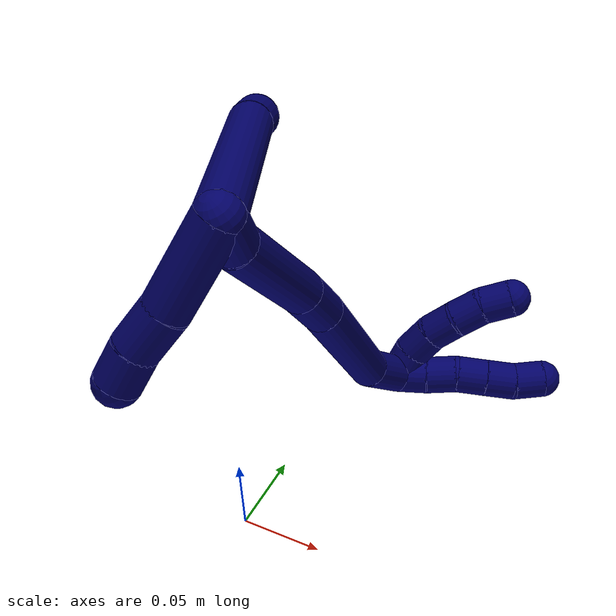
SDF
<sdf version="1.7">
 <world name="default">
  <model name="photoneo_s_sensor">
   <static>1</static>
   <pose>0 0 2 1.57079 1.57079 3.14159</pose>
   <link name="link">
    <inertial><mass>0.1</mass></inertial>
    <sensor name="sensor" type="depth">
     <update_rate>30</update_rate>
     <camera>
      <horizontal_fov>1.22</horizontal_fov>
      <image><width>1920</width><height>1200</height><format>B8G8R8</format></image>
      <clip><near>0.1</near><far>4</far></clip>
      <depth_camera><output>points</output></depth_camera>
     </camera>
     <plugin name="camera_plugin" filename="libgazebo_ros_depth_camera.so">
      <baseline>0.2</baseline>
      <alwaysOn>1</alwaysOn>
      <updateRate>0.0</updateRate>
      <cameraName>camera_ir</cameraName>
      <imageTopicName>/camera/color/image_raw</imageTopicName>
      <cameraInfoTopicName>/camera/color/camera_info</cameraInfoTopicName>
      <depthImageTopicName>/camera/depth/image_raw</depthImageTopicName>
      <depthImageCameraInfoTopicName>/camera/depth/camera_info</depthImageCameraInfoTopicName>
      <pointCloudTopicName>/camera/depth/points</pointCloudTopicName>
      <frameName>fr_optical</frameName>
      <pointCloudCutoff>0.1</pointCloudCutoff>
      <pointCloudCutoffMax>2.0</pointCloudCutoffMax>
      <distortionK1>0</distortionK1>
      <distortionK2>0</distortionK2>
      <distortionK3>0</distortionK3>
      <distortionT1>0</distortionT1>
      <distortionT2>0</distortionT2>
      <CxPrime>0</CxPrime>
      <Cx>0</Cx>
      <Cy>0</Cy>
      <focalLength>0</focalLength>
      <hackBaseline>0</hackBaseline>
     </plugin>
    </sensor>
   </link>
  </model>
  <model name="bin">
   <static>1</static>
   <link name="bottom">
    <collision name="collision-bottom">
     <pose>0 0 -0.01 0 -0 0</pose>
     <geometry><box><size>0.8 0.6 0.02</size></box></geometry>
     <surface>
      <friction><ode><mu>100</mu><mu2>100</mu2></ode></friction>
      <contact><collide_bitmask>65535</collide_bitmask></contact>
     </surface>
    </collision>
   </link>
   <link name="west_wall">
    <collision name="collision-west_wall">
     <pose>-0.41 0 0.1 0 -0 0</pose>
     <geometry><box><size>0.02 0.6 0.2</size></box></geometry>
     <surface>
      <friction><ode><mu>100</mu><mu2>100</mu2></ode></friction>
      <contact><collide_bitmask>65535</collide_bitmask></contact>
     </surface>
    </collision>
   </link>
   <link name="east_wall">
    <collision name="collision-east_wall">
     <pose>0.41 0 0.1 0 -0 0</pose>
     <geometry><box><size>0.02 0.6 0.2</size></box></geometry>
     <surface>
      <friction><ode><mu>100</mu><mu2>100</mu2></ode></friction>
      <contact><collide_bitmask>65535</collide_bitmask></contact>
     </surface>
    </collision>
   </link>
   <link name="south_wall">
    <collision name="collision-south_wall">
     <pose>0 -0.31 0.1 0 -0 0</pose>
     <geometry><box><size>0.8 0.02 0.2</size></box></geometry>
     <surface>
      <friction><ode><mu>100</mu><mu2>100</mu2></ode></friction>
      <contact><collide_bitmask>65535</collide_bitmask></contact>
     </surface>
    </collision>
   </link>
   <link name="north_wall">
    <collision name="collision-north_wall">
     <pose>0 0.31 0.1 0 -0 0</pose>
     <geometry><box><size>0.8 0.02 0.2</size></box></geometry>
     <surface>
      <friction><ode><mu>100</mu><mu2>100</mu2></ode></friction>
      <contact><collide_bitmask>65535</collide_bitmask></contact>
     </surface>
    </collision>
   </link>
  </model>
  <model name="7">
   <static>0</static>
   <link name="7">
    <collision name="collision-cylinder-e_1_2_8">
     <pose>-0.039611 0.046461 -0.020228 -1.98142 -0.663484 0.967956</pose>
     <geometry><cylinder><radius>0.0125</radius><length>0.128636</length></cylinder></geometry>
     <surface>
      <friction><ode><mu>1.16</mu><mu2>1.16</mu2><slip1>0</slip1><slip2>0</slip2></ode></friction>
      <contact><ode><kp>1e+06</kp><kd>1</kd><max_vel>0</max_vel><min_depth>0.001</min_depth></ode></contact>
     </surface>
    </collision>
    <visual name="visual-cylinder-e_1_2_8">
     <pose>-0.039611 0.046461 -0.020228 -1.98142 -0.663484 0.967956</pose>
     <geometry><cylinder><radius>0.0125</radius><length>0.128636</length></cylinder></geometry>
     <material><ambient>0.003922 0 0.403922 1</ambient></material>
    </visual>
    <collision name="collision-cylinder-e_2_8_6">
     <pose>-0.085256 0.100359 -0.045187 -2.13741 -0.600184 1.02648</pose>
     <geometry><cylinder><radius>0.0125</radius><length>0.021364</length></cylinder></geometry>
     <surface>
      <friction><ode><mu>1.16</mu><mu2>1.16</mu2><slip1>0</slip1><slip2>0</slip2></ode></friction>
      <contact><ode><kp>1e+06</kp><kd>1</kd><max_vel>0</max_vel><min_depth>0.001</min_depth></ode></contact>
     </surface>
    </collision>
    <visual name="visual-cylinder-e_2_8_6">
     <pose>-0.085256 0.100359 -0.045187 -2.13741 -0.600184 1.02648</pose>
     <geometry><cylinder><radius>0.0125</radius><length>0.021364</length></cylinder></geometry>
     <material><ambient>0.003922 0 0.403922 1</ambient></material>
    </visual>
    <collision name="collision-cylinder-e_1_2_9">
     <pose>-0.012031 -0.017141 -0.016113 2.32528 -0.472711 -1.01636</pose>
     <geometry><cylinder><radius>0.0125</radius><length>0.052847</length></cylinder></geometry>
     <surface>
      <friction><ode><mu>1.16</mu><mu2>1.16</mu2><slip1>0</slip1><slip2>0</slip2></ode></friction>
      <contact><ode><kp>1e+06</kp><kd>1</kd><max_vel>0</max_vel><min_depth>0.001</min_depth></ode></contact>
     </surface>
    </collision>
    <visual name="visual-cylinder-e_1_2_9">
     <pose>-0.012031 -0.017141 -0.016113 2.32528 -0.472711 -1.01636</pose>
     <geometry><cylinder><radius>0.0125</radius><length>0.052847</length></cylinder></geometry>
     <material><ambient>0.003922 0 0.403922 1</ambient></material>
    </visual>
    <collision name="collision-cylinder-e_2_9_10">
     <pose>-0.03103 -0.042887 -0.038823 2.22493 -0.571231 -1.07373</pose>
     <geometry><cylinder><radius>0.0125</radius><length>0.025776</length></cylinder></geometry>
     <surface>
      <friction><ode><mu>1.16</mu><mu2>1.16</mu2><slip1>0</slip1><slip2>0</slip2></ode></friction>
      <contact><ode><kp>1e+06</kp><kd>1</kd><max_vel>0</max_vel><min_depth>0.001</min_depth></ode></contact>
     </surface>
    </collision>
    <visual name="visual-cylinder-e_2_9_10">
     <pose>-0.03103 -0.042887 -0.038823 2.22493 -0.571231 -1.07373</pose>
     <geometry><cylinder><radius>0.0125</radius><length>0.025776</length></cylinder></geometry>
     <material><ambient>0.003922 0 0.403922 1</ambient></material>
    </visual>
    <collision name="collision-cylinder-e_3_10_5">
     <pose>-0.042752 -0.05834 -0.052109 2.34433 -0.460938 -1.01655</pose>
     <geometry><cylinder><radius>0.0125</radius><length>0.021377</length></cylinder></geometry>
     <surface>
      <friction><ode><mu>1.16</mu><mu2>1.16</mu2><slip1>0</slip1><slip2>0</slip2></ode></friction>
      <contact><ode><kp>1e+06</kp><kd>1</kd><max_vel>0</max_vel><min_depth>0.001</min_depth></ode></contact>
     </surface>
    </collision>
    <visual name="visual-cylinder-e_3_10_5">
     <pose>-0.042752 -0.05834 -0.052109 2.34433 -0.460938 -1.01655</pose>
     <geometry><cylinder><radius>0.0125</radius><length>0.021377</length></cylinder></geometry>
     <material><ambient>0.003922 0 0.403922 1</ambient></material>
    </visual>
    <collision name="collision-cylinder-e_1_2_11">
     <pose>-0.003842 0.001935 -0.011685 -2.97748 -0.313705 2.18253</pose>
     <geometry><cylinder><radius>0.0125</radius><length>0.024903</length></cylinder></geometry>
     <surface>
      <friction><ode><mu>1.16</mu><mu2>1.16</mu2><slip1>0</slip1><slip2>0</slip2></ode></friction>
      <contact><ode><kp>1e+06</kp><kd>1</kd><max_vel>0</max_vel><min_depth>0.001</min_depth></ode></contact>
     </surface>
    </collision>
    <visual name="visual-cylinder-e_1_2_11">
     <pose>-0.003842 0.001935 -0.011685 -2.97748 -0.313705 2.18253</pose>
     <geometry><cylinder><radius>0.0125</radius><length>0.024903</length></cylinder></geometry>
     <material><ambient>0.003922 0 0.403922 1</ambient></material>
    </visual>
    <collision name="collision-cylinder-e_2_11_12">
     <pose>-0.017008 0.019485 -0.059829 -2.73693 -0.230863 1.02891</pose>
     <geometry><cylinder><radius>0.0125</radius><length>0.081487</length></cylinder></geometry>
     <surface>
      <friction><ode><mu>1.16</mu><mu2>1.16</mu2><slip1>0</slip1><slip2>0</slip2></ode></friction>
      <contact><ode><kp>1e+06</kp><kd>1</kd><max_vel>0</max_vel><min_depth>0.001</min_depth></ode></contact>
     </surface>
    </collision>
    <visual name="visual-cylinder-e_2_11_12">
     <pose>-0.017008 0.019485 -0.059829 -2.73693 -0.230863 1.02891</pose>
     <geometry><cylinder><radius>0.0125</radius><length>0.081487</length></cylinder></geometry>
     <material><ambient>0.003922 0 0.403922 1</ambient></material>
    </visual>
    <collision name="collision-cylinder-e_3_12_13">
     <pose>-0.030891 0.040971 -0.112511 -2.79438 -0.258417 1.27531</pose>
     <geometry><cylinder><radius>0.0125</radius><length>0.03569</length></cylinder></geometry>
     <surface>
      <friction><ode><mu>1.16</mu><mu2>1.16</mu2><slip1>0</slip1><slip2>0</slip2></ode></friction>
      <contact><ode><kp>1e+06</kp><kd>1</kd><max_vel>0</max_vel><min_depth>0.001</min_depth></ode></contact>
     </surface>
    </collision>
    <visual name="visual-cylinder-e_3_12_13">
     <pose>-0.030891 0.040971 -0.112511 -2.79438 -0.258417 1.27531</pose>
     <geometry><cylinder><radius>0.0125</radius><length>0.03569</length></cylinder></geometry>
     <material><ambient>0.003922 0 0.403922 1</ambient></material>
    </visual>
    <collision name="collision-cylinder-e_4_13_14">
     <pose>-0.051977 0.06346 -0.182784 -2.84331 -0.284342 1.52228</pose>
     <geometry><cylinder><radius>0.0125</radius><length>0.117824</length></cylinder></geometry>
     <surface>
      <friction><ode><mu>1.16</mu><mu2>1.16</mu2><slip1>0</slip1><slip2>0</slip2></ode></friction>
      <contact><ode><kp>1e+06</kp><kd>1</kd><max_vel>0</max_vel><min_depth>0.001</min_depth></ode></contact>
     </surface>
    </collision>
    <visual name="visual-cylinder-e_4_13_14">
     <pose>-0.051977 0.06346 -0.182784 -2.84331 -0.284342 1.52228</pose>
     <geometry><cylinder><radius>0.0125</radius><length>0.117824</length></cylinder></geometry>
     <material><ambient>0.003922 0 0.403922 1</ambient></material>
    </visual>
    <collision name="collision-cylinder-e_5_14_1">
     <pose>-0.069547 0.090709 -0.253798 -2.58179 -0.052057 0.180649</pose>
     <geometry><cylinder><radius>0.0125</radius><length>0.040096</length></cylinder></geometry>
     <surface>
      <friction><ode><mu>1.16</mu><mu2>1.16</mu2><slip1>0</slip1><slip2>0</slip2></ode></friction>
      <contact><ode><kp>1e+06</kp><kd>1</kd><max_vel>0</max_vel><min_depth>0.001</min_depth></ode></contact>
     </surface>
    </collision>
    <visual name="visual-cylinder-e_5_14_1">
     <pose>-0.069547 0.090709 -0.253798 -2.58179 -0.052057 0.180649</pose>
     <geometry><cylinder><radius>0.0125</radius><length>0.040096</length></cylinder></geometry>
     <material><ambient>0.003922 0 0.403922 1</ambient></material>
    </visual>
    <collision name="collision-cylinder-e_1_1_15">
     <pose>-0.066922 0.108414 -0.264721 -0.863901 0.375554 -0.174742</pose>
     <geometry><cylinder><radius>0.0125</radius><length>0.02</length></cylinder></geometry>
     <surface>
      <friction><ode><mu>1.16</mu><mu2>1.16</mu2><slip1>0</slip1><slip2>0</slip2></ode></friction>
      <contact><ode><kp>1e+06</kp><kd>1</kd><max_vel>0</max_vel><min_depth>0.001</min_depth></ode></contact>
     </surface>
    </collision>
    <visual name="visual-cylinder-e_1_1_15">
     <pose>-0.066922 0.108414 -0.264721 -0.863901 0.375554 -0.174742</pose>
     <geometry><cylinder><radius>0.0125</radius><length>0.02</length></cylinder></geometry>
     <material><ambient>0.003922 0 0.403922 1</ambient></material>
    </visual>
    <collision name="collision-cylinder-e_2_15_16">
     <pose>-0.057125 0.121514 -0.253568 -0.867494 0.659752 -0.314543</pose>
     <geometry><cylinder><radius>0.0125</radius><length>0.02</length></cylinder></geometry>
     <surface>
      <friction><ode><mu>1.16</mu><mu2>1.16</mu2><slip1>0</slip1><slip2>0</slip2></ode></friction>
      <contact><ode><kp>1e+06</kp><kd>1</kd><max_vel>0</max_vel><min_depth>0.001</min_depth></ode></contact>
     </surface>
    </collision>
    <visual name="visual-cylinder-e_2_15_16">
     <pose>-0.057125 0.121514 -0.253568 -0.867494 0.659752 -0.314543</pose>
     <geometry><cylinder><radius>0.0125</radius><length>0.02</length></cylinder></geometry>
     <material><ambient>0.003922 0 0.403922 1</ambient></material>
    </visual>
    <collision name="collision-cylinder-e_3_16_17">
     <pose>-0.043538 0.133299 -0.245108 -1.04388 0.841693 -0.503909</pose>
     <geometry><cylinder><radius>0.0125</radius><length>0.02</length></cylinder></geometry>
     <surface>
      <friction><ode><mu>1.16</mu><mu2>1.16</mu2><slip1>0</slip1><slip2>0</slip2></ode></friction>
      <contact><ode><kp>1e+06</kp><kd>1</kd><max_vel>0</max_vel><min_depth>0.001</min_depth></ode></contact>
     </surface>
    </collision>
    <visual name="visual-cylinder-e_3_16_17">
     <pose>-0.043538 0.133299 -0.245108 -1.04388 0.841693 -0.503909</pose>
     <geometry><cylinder><radius>0.0125</radius><length>0.02</length></cylinder></geometry>
     <material><ambient>0.003922 0 0.403922 1</ambient></material>
    </visual>
    <collision name="collision-cylinder-e_4_17_18">
     <pose>-0.028964 0.145808 -0.239809 -1.28977 0.791778 -0.609175</pose>
     <geometry><cylinder><radius>0.0125</radius><length>0.02</length></cylinder></geometry>
     <surface>
      <friction><ode><mu>1.16</mu><mu2>1.16</mu2><slip1>0</slip1><slip2>0</slip2></ode></friction>
      <contact><ode><kp>1e+06</kp><kd>1</kd><max_vel>0</max_vel><min_depth>0.001</min_depth></ode></contact>
     </surface>
    </collision>
    <visual name="visual-cylinder-e_4_17_18">
     <pose>-0.028964 0.145808 -0.239809 -1.28977 0.791778 -0.609175</pose>
     <geometry><cylinder><radius>0.0125</radius><length>0.02</length></cylinder></geometry>
     <material><ambient>0.003922 0 0.403922 1</ambient></material>
    </visual>
    <collision name="collision-cylinder-e_5_18_4">
     <pose>-0.013956 0.158696 -0.238056 -1.60264 0.909545 -0.934928</pose>
     <geometry><cylinder><radius>0.0125</radius><length>0.02</length></cylinder></geometry>
     <surface>
      <friction><ode><mu>1.16</mu><mu2>1.16</mu2><slip1>0</slip1><slip2>0</slip2></ode></friction>
      <contact><ode><kp>1e+06</kp><kd>1</kd><max_vel>0</max_vel><min_depth>0.001</min_depth></ode></contact>
     </surface>
    </collision>
    <visual name="visual-cylinder-e_5_18_4">
     <pose>-0.013956 0.158696 -0.238056 -1.60264 0.909545 -0.934928</pose>
     <geometry><cylinder><radius>0.0125</radius><length>0.02</length></cylinder></geometry>
     <material><ambient>0.003922 0 0.403922 1</ambient></material>
    </visual>
    <collision name="collision-cylinder-e_1_1_19">
     <pose>-0.062033 0.105814 -0.273362 -2.09722 1.02697 -1.55057</pose>
     <geometry><cylinder><radius>0.0125</radius><length>0.02</length></cylinder></geometry>
     <surface>
      <friction><ode><mu>1.16</mu><mu2>1.16</mu2><slip1>0</slip1><slip2>0</slip2></ode></friction>
      <contact><ode><kp>1e+06</kp><kd>1</kd><max_vel>0</max_vel><min_depth>0.001</min_depth></ode></contact>
     </surface>
    </collision>
    <visual name="visual-cylinder-e_1_1_19">
     <pose>-0.062033 0.105814 -0.273362 -2.09722 1.02697 -1.55057</pose>
     <geometry><cylinder><radius>0.0125</radius><length>0.02</length></cylinder></geometry>
     <material><ambient>0.003922 0 0.403922 1</ambient></material>
    </visual>
    <collision name="collision-cylinder-e_2_19_20">
     <pose>-0.045291 0.115574 -0.278213 -1.97337 0.958742 -1.3327</pose>
     <geometry><cylinder><radius>0.0125</radius><length>0.02</length></cylinder></geometry>
     <surface>
      <friction><ode><mu>1.16</mu><mu2>1.16</mu2><slip1>0</slip1><slip2>0</slip2></ode></friction>
      <contact><ode><kp>1e+06</kp><kd>1</kd><max_vel>0</max_vel><min_depth>0.001</min_depth></ode></contact>
     </surface>
    </collision>
    <visual name="visual-cylinder-e_2_19_20">
     <pose>-0.045291 0.115574 -0.278213 -1.97337 0.958742 -1.3327</pose>
     <geometry><cylinder><radius>0.0125</radius><length>0.02</length></cylinder></geometry>
     <material><ambient>0.003922 0 0.403922 1</ambient></material>
    </visual>
    <collision name="collision-cylinder-e_3_20_21">
     <pose>-0.029321 0.125395 -0.284804 -2.33423 0.8922 -1.68359</pose>
     <geometry><cylinder><radius>0.0125</radius><length>0.02</length></cylinder></geometry>
     <surface>
      <friction><ode><mu>1.16</mu><mu2>1.16</mu2><slip1>0</slip1><slip2>0</slip2></ode></friction>
      <contact><ode><kp>1e+06</kp><kd>1</kd><max_vel>0</max_vel><min_depth>0.001</min_depth></ode></contact>
     </surface>
    </collision>
    <visual name="visual-cylinder-e_3_20_21">
     <pose>-0.029321 0.125395 -0.284804 -2.33423 0.8922 -1.68359</pose>
     <geometry><cylinder><radius>0.0125</radius><length>0.02</length></cylinder></geometry>
     <material><ambient>0.003922 0 0.403922 1</ambient></material>
    </visual>
    <collision name="collision-cylinder-e_4_21_22">
     <pose>-0.013913 0.134596 -0.293628 -2.33623 0.866994 -1.65378</pose>
     <geometry><cylinder><radius>0.0125</radius><length>0.02</length></cylinder></geometry>
     <surface>
      <friction><ode><mu>1.16</mu><mu2>1.16</mu2><slip1>0</slip1><slip2>0</slip2></ode></friction>
      <contact><ode><kp>1e+06</kp><kd>1</kd><max_vel>0</max_vel><min_depth>0.001</min_depth></ode></contact>
     </surface>
    </collision>
    <visual name="visual-cylinder-e_4_21_22">
     <pose>-0.013913 0.134596 -0.293628 -2.33623 0.866994 -1.65378</pose>
     <geometry><cylinder><radius>0.0125</radius><length>0.02</length></cylinder></geometry>
     <material><ambient>0.003922 0 0.403922 1</ambient></material>
    </visual>
    <collision name="collision-cylinder-e_5_22_3">
     <pose>0.000647 0.145651 -0.301439 -2.05095 0.766453 -1.17304</pose>
     <geometry><cylinder><radius>0.0125</radius><length>0.02</length></cylinder></geometry>
     <surface>
      <friction><ode><mu>1.16</mu><mu2>1.16</mu2><slip1>0</slip1><slip2>0</slip2></ode></friction>
      <contact><ode><kp>1e+06</kp><kd>1</kd><max_vel>0</max_vel><min_depth>0.001</min_depth></ode></contact>
     </surface>
    </collision>
    <visual name="visual-cylinder-e_5_22_3">
     <pose>0.000647 0.145651 -0.301439 -2.05095 0.766453 -1.17304</pose>
     <geometry><cylinder><radius>0.0125</radius><length>0.02</length></cylinder></geometry>
     <material><ambient>0.003922 0 0.403922 1</ambient></material>
    </visual>
    <collision name="collision-sphere-3">
     <pose>0.007583 0.15204 -0.304766 0 -0 0</pose>
     <geometry><sphere><radius>0.0125</radius></sphere></geometry>
     <surface>
      <friction><ode><mu>1.16</mu><mu2>1.16</mu2><slip1>0</slip1><slip2>0</slip2></ode></friction>
      <contact><ode><kp>1e+06</kp><kd>1</kd><max_vel>0</max_vel><min_depth>0.001</min_depth></ode></contact>
     </surface>
    </collision>
    <visual name="visual-sphere-3">
     <pose>0.007583 0.15204 -0.304766 0 -0 0</pose>
     <geometry><sphere><radius>0.0125</radius></sphere></geometry>
     <material><ambient>0.003922 0 0.403922 1</ambient></material>
    </visual>
    <collision name="collision-sphere-22">
     <pose>-0.006289 0.139262 -0.298111 0 -0 0</pose>
     <geometry><sphere><radius>0.0125</radius></sphere></geometry>
     <surface>
      <friction><ode><mu>1.16</mu><mu2>1.16</mu2><slip1>0</slip1><slip2>0</slip2></ode></friction>
      <contact><ode><kp>1e+06</kp><kd>1</kd><max_vel>0</max_vel><min_depth>0.001</min_depth></ode></contact>
     </surface>
    </collision>
    <visual name="visual-sphere-22">
     <pose>-0.006289 0.139262 -0.298111 0 -0 0</pose>
     <geometry><sphere><radius>0.0125</radius></sphere></geometry>
     <material><ambient>0.003922 0 0.403922 1</ambient></material>
    </visual>
    <collision name="collision-sphere-21">
     <pose>-0.021537 0.12993 -0.289144 0 -0 0</pose>
     <geometry><sphere><radius>0.0125</radius></sphere></geometry>
     <surface>
      <friction><ode><mu>1.16</mu><mu2>1.16</mu2><slip1>0</slip1><slip2>0</slip2></ode></friction>
      <contact><ode><kp>1e+06</kp><kd>1</kd><max_vel>0</max_vel><min_depth>0.001</min_depth></ode></contact>
     </surface>
    </collision>
    <visual name="visual-sphere-21">
     <pose>-0.021537 0.12993 -0.289144 0 -0 0</pose>
     <geometry><sphere><radius>0.0125</radius></sphere></geometry>
     <material><ambient>0.003922 0 0.403922 1</ambient></material>
    </visual>
    <collision name="collision-sphere-20">
     <pose>-0.037106 0.12086 -0.280464 0 -0 0</pose>
     <geometry><sphere><radius>0.0125</radius></sphere></geometry>
     <surface>
      <friction><ode><mu>1.16</mu><mu2>1.16</mu2><slip1>0</slip1><slip2>0</slip2></ode></friction>
      <contact><ode><kp>1e+06</kp><kd>1</kd><max_vel>0</max_vel><min_depth>0.001</min_depth></ode></contact>
     </surface>
    </collision>
    <visual name="visual-sphere-20">
     <pose>-0.037106 0.12086 -0.280464 0 -0 0</pose>
     <geometry><sphere><radius>0.0125</radius></sphere></geometry>
     <material><ambient>0.003922 0 0.403922 1</ambient></material>
    </visual>
    <collision name="collision-sphere-19">
     <pose>-0.053475 0.110287 -0.275962 0 -0 0</pose>
     <geometry><sphere><radius>0.0125</radius></sphere></geometry>
     <surface>
      <friction><ode><mu>1.16</mu><mu2>1.16</mu2><slip1>0</slip1><slip2>0</slip2></ode></friction>
      <contact><ode><kp>1e+06</kp><kd>1</kd><max_vel>0</max_vel><min_depth>0.001</min_depth></ode></contact>
     </surface>
    </collision>
    <visual name="visual-sphere-19">
     <pose>-0.053475 0.110287 -0.275962 0 -0 0</pose>
     <geometry><sphere><radius>0.0125</radius></sphere></geometry>
     <material><ambient>0.003922 0 0.403922 1</ambient></material>
    </visual>
    <collision name="collision-sphere-5">
     <pose>-0.047506 -0.065189 -0.058797 0 -0 0</pose>
     <geometry><sphere><radius>0.0125</radius></sphere></geometry>
     <surface>
      <friction><ode><mu>1.16</mu><mu2>1.16</mu2><slip1>0</slip1><slip2>0</slip2></ode></friction>
      <contact><ode><kp>1e+06</kp><kd>1</kd><max_vel>0</max_vel><min_depth>0.001</min_depth></ode></contact>
     </surface>
    </collision>
    <visual name="visual-sphere-5">
     <pose>-0.047506 -0.065189 -0.058797 0 -0 0</pose>
     <geometry><sphere><radius>0.0125</radius></sphere></geometry>
     <material><ambient>0.003922 0 0.403922 1</ambient></material>
    </visual>
    <collision name="collision-sphere-10">
     <pose>-0.037998 -0.051491 -0.04542 0 -0 0</pose>
     <geometry><sphere><radius>0.0125</radius></sphere></geometry>
     <surface>
      <friction><ode><mu>1.16</mu><mu2>1.16</mu2><slip1>0</slip1><slip2>0</slip2></ode></friction>
      <contact><ode><kp>1e+06</kp><kd>1</kd><max_vel>0</max_vel><min_depth>0.001</min_depth></ode></contact>
     </surface>
    </collision>
    <visual name="visual-sphere-10">
     <pose>-0.037998 -0.051491 -0.04542 0 -0 0</pose>
     <geometry><sphere><radius>0.0125</radius></sphere></geometry>
     <material><ambient>0.003922 0 0.403922 1</ambient></material>
    </visual>
    <collision name="collision-sphere-6">
     <pose>-0.091289 0.107796 -0.049919 0 -0 0</pose>
     <geometry><sphere><radius>0.0125</radius></sphere></geometry>
     <surface>
      <friction><ode><mu>1.16</mu><mu2>1.16</mu2><slip1>0</slip1><slip2>0</slip2></ode></friction>
      <contact><ode><kp>1e+06</kp><kd>1</kd><max_vel>0</max_vel><min_depth>0.001</min_depth></ode></contact>
     </surface>
    </collision>
    <visual name="visual-sphere-6">
     <pose>-0.091289 0.107796 -0.049919 0 -0 0</pose>
     <geometry><sphere><radius>0.0125</radius></sphere></geometry>
     <material><ambient>0.003922 0 0.403922 1</ambient></material>
    </visual>
    <collision name="collision-sphere-9">
     <pose>-0.024061 -0.034283 -0.032226 0 -0 0</pose>
     <geometry><sphere><radius>0.0125</radius></sphere></geometry>
     <surface>
      <friction><ode><mu>1.16</mu><mu2>1.16</mu2><slip1>0</slip1><slip2>0</slip2></ode></friction>
      <contact><ode><kp>1e+06</kp><kd>1</kd><max_vel>0</max_vel><min_depth>0.001</min_depth></ode></contact>
     </surface>
    </collision>
    <visual name="visual-sphere-9">
     <pose>-0.024061 -0.034283 -0.032226 0 -0 0</pose>
     <geometry><sphere><radius>0.0125</radius></sphere></geometry>
     <material><ambient>0.003922 0 0.403922 1</ambient></material>
    </visual>
    <collision name="collision-sphere-2">
     <geometry><sphere><radius>0.0125</radius></sphere></geometry>
     <surface>
      <friction><ode><mu>1.16</mu><mu2>1.16</mu2><slip1>0</slip1><slip2>0</slip2></ode></friction>
      <contact><ode><kp>1e+06</kp><kd>1</kd><max_vel>0</max_vel><min_depth>0.001</min_depth></ode></contact>
     </surface>
    </collision>
    <visual name="visual-sphere-2">
     <geometry><sphere><radius>0.0125</radius></sphere></geometry>
     <material><ambient>0.003922 0 0.403922 1</ambient></material>
    </visual>
    <collision name="collision-sphere-8">
     <pose>-0.079222 0.092921 -0.040455 0 -0 0</pose>
     <geometry><sphere><radius>0.0125</radius></sphere></geometry>
     <surface>
      <friction><ode><mu>1.16</mu><mu2>1.16</mu2><slip1>0</slip1><slip2>0</slip2></ode></friction>
      <contact><ode><kp>1e+06</kp><kd>1</kd><max_vel>0</max_vel><min_depth>0.001</min_depth></ode></contact>
     </surface>
    </collision>
    <visual name="visual-sphere-8">
     <pose>-0.079222 0.092921 -0.040455 0 -0 0</pose>
     <geometry><sphere><radius>0.0125</radius></sphere></geometry>
     <material><ambient>0.003922 0 0.403922 1</ambient></material>
    </visual>
    <collision name="collision-sphere-11">
     <pose>-0.007685 0.00387 -0.02337 0 -0 0</pose>
     <geometry><sphere><radius>0.0125</radius></sphere></geometry>
     <surface>
      <friction><ode><mu>1.16</mu><mu2>1.16</mu2><slip1>0</slip1><slip2>0</slip2></ode></friction>
      <contact><ode><kp>1e+06</kp><kd>1</kd><max_vel>0</max_vel><min_depth>0.001</min_depth></ode></contact>
     </surface>
    </collision>
    <visual name="visual-sphere-11">
     <pose>-0.007685 0.00387 -0.02337 0 -0 0</pose>
     <geometry><sphere><radius>0.0125</radius></sphere></geometry>
     <material><ambient>0.003922 0 0.403922 1</ambient></material>
    </visual>
    <collision name="collision-sphere-12">
     <pose>-0.026331 0.035101 -0.096288 0 -0 0</pose>
     <geometry><sphere><radius>0.0125</radius></sphere></geometry>
     <surface>
      <friction><ode><mu>1.16</mu><mu2>1.16</mu2><slip1>0</slip1><slip2>0</slip2></ode></friction>
      <contact><ode><kp>1e+06</kp><kd>1</kd><max_vel>0</max_vel><min_depth>0.001</min_depth></ode></contact>
     </surface>
    </collision>
    <visual name="visual-sphere-12">
     <pose>-0.026331 0.035101 -0.096288 0 -0 0</pose>
     <geometry><sphere><radius>0.0125</radius></sphere></geometry>
     <material><ambient>0.003922 0 0.403922 1</ambient></material>
    </visual>
    <collision name="collision-sphere-13">
     <pose>-0.035451 0.046842 -0.128734 0 -0 0</pose>
     <geometry><sphere><radius>0.0125</radius></sphere></geometry>
     <surface>
      <friction><ode><mu>1.16</mu><mu2>1.16</mu2><slip1>0</slip1><slip2>0</slip2></ode></friction>
      <contact><ode><kp>1e+06</kp><kd>1</kd><max_vel>0</max_vel><min_depth>0.001</min_depth></ode></contact>
     </surface>
    </collision>
    <visual name="visual-sphere-13">
     <pose>-0.035451 0.046842 -0.128734 0 -0 0</pose>
     <geometry><sphere><radius>0.0125</radius></sphere></geometry>
     <material><ambient>0.003922 0 0.403922 1</ambient></material>
    </visual>
    <collision name="collision-sphere-14">
     <pose>-0.068504 0.080077 -0.236833 0 -0 0</pose>
     <geometry><sphere><radius>0.0125</radius></sphere></geometry>
     <surface>
      <friction><ode><mu>1.16</mu><mu2>1.16</mu2><slip1>0</slip1><slip2>0</slip2></ode></friction>
      <contact><ode><kp>1e+06</kp><kd>1</kd><max_vel>0</max_vel><min_depth>0.001</min_depth></ode></contact>
     </surface>
    </collision>
    <visual name="visual-sphere-14">
     <pose>-0.068504 0.080077 -0.236833 0 -0 0</pose>
     <geometry><sphere><radius>0.0125</radius></sphere></geometry>
     <material><ambient>0.003922 0 0.403922 1</ambient></material>
    </visual>
    <collision name="collision-sphere-1">
     <pose>-0.07059 0.10134 -0.270763 0 -0 0</pose>
     <geometry><sphere><radius>0.0125</radius></sphere></geometry>
     <surface>
      <friction><ode><mu>1.16</mu><mu2>1.16</mu2><slip1>0</slip1><slip2>0</slip2></ode></friction>
      <contact><ode><kp>1e+06</kp><kd>1</kd><max_vel>0</max_vel><min_depth>0.001</min_depth></ode></contact>
     </surface>
    </collision>
    <visual name="visual-sphere-1">
     <pose>-0.07059 0.10134 -0.270763 0 -0 0</pose>
     <geometry><sphere><radius>0.0125</radius></sphere></geometry>
     <material><ambient>0.003922 0 0.403922 1</ambient></material>
    </visual>
    <collision name="collision-sphere-18">
     <pose>-0.021848 0.152558 -0.237861 0 -0 0</pose>
     <geometry><sphere><radius>0.0125</radius></sphere></geometry>
     <surface>
      <friction><ode><mu>1.16</mu><mu2>1.16</mu2><slip1>0</slip1><slip2>0</slip2></ode></friction>
      <contact><ode><kp>1e+06</kp><kd>1</kd><max_vel>0</max_vel><min_depth>0.001</min_depth></ode></contact>
     </surface>
    </collision>
    <visual name="visual-sphere-18">
     <pose>-0.021848 0.152558 -0.237861 0 -0 0</pose>
     <geometry><sphere><radius>0.0125</radius></sphere></geometry>
     <material><ambient>0.003922 0 0.403922 1</ambient></material>
    </visual>
    <collision name="collision-sphere-15">
     <pose>-0.063254 0.115488 -0.258678 0 -0 0</pose>
     <geometry><sphere><radius>0.0125</radius></sphere></geometry>
     <surface>
      <friction><ode><mu>1.16</mu><mu2>1.16</mu2><slip1>0</slip1><slip2>0</slip2></ode></friction>
      <contact><ode><kp>1e+06</kp><kd>1</kd><max_vel>0</max_vel><min_depth>0.001</min_depth></ode></contact>
     </surface>
    </collision>
    <visual name="visual-sphere-15">
     <pose>-0.063254 0.115488 -0.258678 0 -0 0</pose>
     <geometry><sphere><radius>0.0125</radius></sphere></geometry>
     <material><ambient>0.003922 0 0.403922 1</ambient></material>
    </visual>
    <collision name="collision-sphere-16">
     <pose>-0.050996 0.127541 -0.248458 0 -0 0</pose>
     <geometry><sphere><radius>0.0125</radius></sphere></geometry>
     <surface>
      <friction><ode><mu>1.16</mu><mu2>1.16</mu2><slip1>0</slip1><slip2>0</slip2></ode></friction>
      <contact><ode><kp>1e+06</kp><kd>1</kd><max_vel>0</max_vel><min_depth>0.001</min_depth></ode></contact>
     </surface>
    </collision>
    <visual name="visual-sphere-16">
     <pose>-0.050996 0.127541 -0.248458 0 -0 0</pose>
     <geometry><sphere><radius>0.0125</radius></sphere></geometry>
     <material><ambient>0.003922 0 0.403922 1</ambient></material>
    </visual>
    <collision name="collision-sphere-17">
     <pose>-0.03608 0.139058 -0.241758 0 -0 0</pose>
     <geometry><sphere><radius>0.0125</radius></sphere></geometry>
     <surface>
      <friction><ode><mu>1.16</mu><mu2>1.16</mu2><slip1>0</slip1><slip2>0</slip2></ode></friction>
      <contact><ode><kp>1e+06</kp><kd>1</kd><max_vel>0</max_vel><min_depth>0.001</min_depth></ode></contact>
     </surface>
    </collision>
    <visual name="visual-sphere-17">
     <pose>-0.03608 0.139058 -0.241758 0 -0 0</pose>
     <geometry><sphere><radius>0.0125</radius></sphere></geometry>
     <material><ambient>0.003922 0 0.403922 1</ambient></material>
    </visual>
    <collision name="collision-sphere-4">
     <pose>-0.006064 0.164834 -0.238252 0 -0 0</pose>
     <geometry><sphere><radius>0.0125</radius></sphere></geometry>
     <surface>
      <friction><ode><mu>1.16</mu><mu2>1.16</mu2><slip1>0</slip1><slip2>0</slip2></ode></friction>
      <contact><ode><kp>1e+06</kp><kd>1</kd><max_vel>0</max_vel><min_depth>0.001</min_depth></ode></contact>
     </surface>
    </collision>
    <visual name="visual-sphere-4">
     <pose>-0.006064 0.164834 -0.238252 0 -0 0</pose>
     <geometry><sphere><radius>0.0125</radius></sphere></geometry>
     <material><ambient>0.003922 0 0.403922 1</ambient></material>
    </visual>
    <inertial>
     <pose>-0.037295 0.05996 -0.134509 0 -0 0</pose>
     <mass>0.75</mass>
     <inertia>
      <ixx>0.00041</ixx>
      <ixy>0</ixy>
      <ixz>0</ixz>
      <iyy>0.000335</iyy>
      <iyz>0</iyz>
      <izz>-5.8e-05</izz>
     </inertia>
    </inertial>
   </link>
   <pose>0.026706 -0.02816 0.256418 0.280144 -0.195781 -0.200872</pose>
  </model>
 </world>
</sdf>
